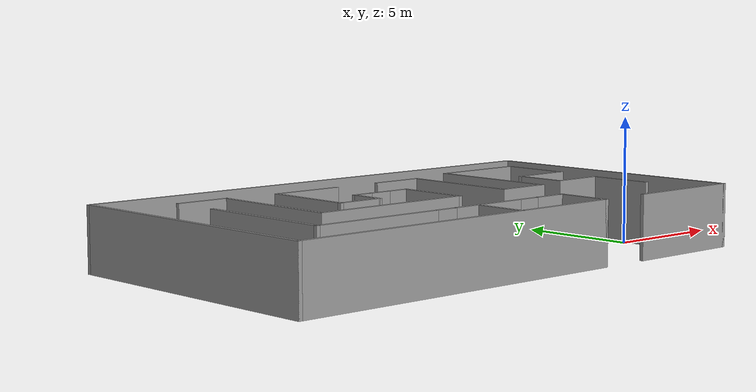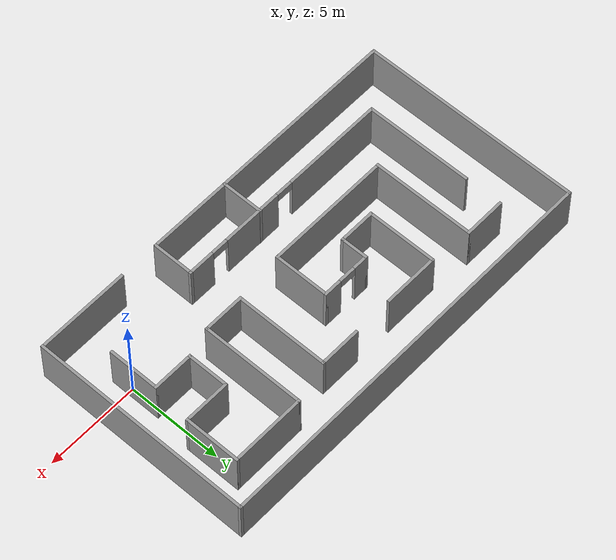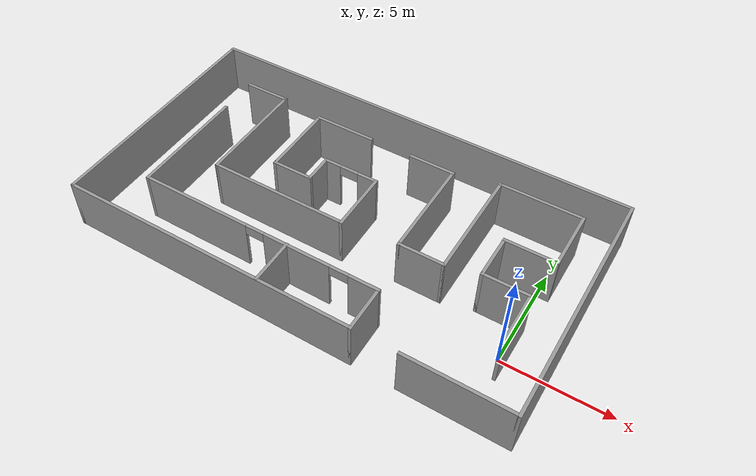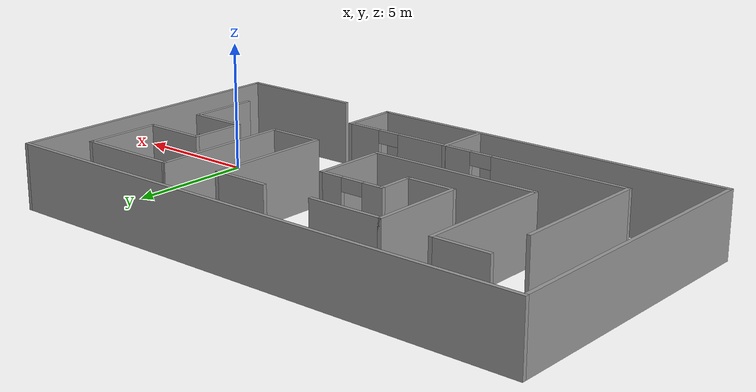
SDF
<?xml version='1.0'?>
<sdf version='1.7'>
  <model name='house.world'>
    <pose>-8.625 2.56 0 0 -0 0</pose>
    <link name='Wall_0'>
      <collision name='Wall_0_Collision'>
        <geometry>
          <box>
            <size>5 0.15 2.5</size>
          </box>
        </geometry>
        <pose>0 0 1.25 0 -0 0</pose>
      </collision>
      <visual name='Wall_0_Visual'>
        <pose>0 0 1.25 0 -0 0</pose>
        <geometry>
          <box>
            <size>5 0.15 2.5</size>
          </box>
        </geometry>
        <material>
          <script>
            <uri>file://media/materials/scripts/gazebo.material</uri>
            <name>Gazebo/Grey</name>
          </script>
          <ambient>1 1 1 1</ambient>
        </material>
        <meta>
          <layer>0</layer>
        </meta>
      </visual>
      <pose>8.25 -5.8 0 0 -0 0</pose>
    </link>
    <link name='Wall_1'>
      <collision name='Wall_1_Collision'>
        <geometry>
          <box>
            <size>11.75 0.15 2.5</size>
          </box>
        </geometry>
        <pose>0 0 1.25 0 -0 0</pose>
      </collision>
      <visual name='Wall_1_Visual'>
        <pose>0 0 1.25 0 -0 0</pose>
        <geometry>
          <box>
            <size>11.75 0.15 2.5</size>
          </box>
        </geometry>
        <material>
          <script>
            <uri>file://media/materials/scripts/gazebo.material</uri>
            <name>Gazebo/Grey</name>
          </script>
          <ambient>1 1 1 1</ambient>
        </material>
        <meta>
          <layer>0</layer>
        </meta>
      </visual>
      <pose>10.675 0 0 0 -0 1.5708</pose>
    </link>
    <link name='Wall_10'>
      <collision name='Wall_10_Collision'>
        <geometry>
          <box>
            <size>5.5 0.15 2.5</size>
          </box>
        </geometry>
        <pose>0 0 1.25 0 -0 0</pose>
      </collision>
      <visual name='Wall_10_Visual'>
        <pose>0 0 1.25 0 -0 0</pose>
        <geometry>
          <box>
            <size>5.5 0.15 2.5</size>
          </box>
        </geometry>
        <material>
          <script>
            <uri>file://media/materials/scripts/gazebo.material</uri>
            <name>Gazebo/Grey</name>
          </script>
          <ambient>1 1 1 1</ambient>
        </material>
        <meta>
          <layer>0</layer>
        </meta>
      </visual>
      <pose>-6.075 1.225 0 0 -0 -1.5708</pose>
    </link>
    <link name='Wall_11'>
      <collision name='Wall_11_Collision'>
        <geometry>
          <box>
            <size>6.75 0.15 2.5</size>
          </box>
        </geometry>
        <pose>0 0 1.25 0 -0 0</pose>
      </collision>
      <visual name='Wall_11_Visual'>
        <pose>0 0 1.25 0 -0 0</pose>
        <geometry>
          <box>
            <size>6.75 0.15 2.5</size>
          </box>
        </geometry>
        <material>
          <script>
            <uri>file://media/materials/scripts/gazebo.material</uri>
            <name>Gazebo/Grey</name>
          </script>
          <ambient>1 1 1 1</ambient>
        </material>
        <meta>
          <layer>0</layer>
        </meta>
      </visual>
      <pose>-2.775 -1.45 0 0 -0 0</pose>
    </link>
    <link name='Wall_12'>
      <collision name='Wall_12_Collision'>
        <geometry>
          <box>
            <size>3 0.15 2.5</size>
          </box>
        </geometry>
        <pose>0 0 1.25 0 -0 0</pose>
      </collision>
      <visual name='Wall_12_Visual'>
        <pose>0 0 1.25 0 -0 0</pose>
        <geometry>
          <box>
            <size>3 0.15 2.5</size>
          </box>
        </geometry>
        <material>
          <script>
            <uri>file://media/materials/scripts/gazebo.material</uri>
            <name>Gazebo/Grey</name>
          </script>
          <ambient>1 1 1 1</ambient>
        </material>
        <meta>
          <layer>0</layer>
        </meta>
      </visual>
      <pose>0.524999 -0.025 0 0 -0 1.5708</pose>
    </link>
    <link name='Wall_13'>
      <pose>-0.775 1.4 0 0 -0 3.14159</pose>
      <visual name='Wall_13_Visual_0'>
        <pose>-0.881404 0 1.25 0 -0 0</pose>
        <geometry>
          <box>
            <size>0.987191 0.15 2.5</size>
          </box>
        </geometry>
        <material>
          <script>
            <uri>file://media/materials/scripts/gazebo.material</uri>
            <name>Gazebo/Grey</name>
          </script>
          <ambient>1 1 1 1</ambient>
        </material>
        <meta>
          <layer>0</layer>
        </meta>
      </visual>
      <collision name='Wall_13_Collision_0'>
        <geometry>
          <box>
            <size>0.987191 0.15 2.5</size>
          </box>
        </geometry>
        <pose>-0.881404 0 1.25 0 -0 0</pose>
      </collision>
      <visual name='Wall_13_Visual_1'>
        <pose>0.943596 0 1.25 0 -0 0</pose>
        <geometry>
          <box>
            <size>0.862809 0.15 2.5</size>
          </box>
        </geometry>
        <material>
          <script>
            <uri>file://media/materials/scripts/gazebo.material</uri>
            <name>Gazebo/Grey</name>
          </script>
          <ambient>1 1 1 1</ambient>
        </material>
        <meta>
          <layer>0</layer>
        </meta>
      </visual>
      <collision name='Wall_13_Collision_1'>
        <geometry>
          <box>
            <size>0.862809 0.15 2.5</size>
          </box>
        </geometry>
        <pose>0.943596 0 1.25 0 -0 0</pose>
      </collision>
      <visual name='Wall_13_Visual_2'>
        <pose>0.062191 0 2.25 0 -0 0</pose>
        <geometry>
          <box>
            <size>0.9 0.15 0.5</size>
          </box>
        </geometry>
        <material>
          <script>
            <uri>file://media/materials/scripts/gazebo.material</uri>
            <name>Gazebo/Grey</name>
          </script>
          <ambient>1 1 1 1</ambient>
        </material>
        <meta>
          <layer>0</layer>
        </meta>
      </visual>
      <collision name='Wall_13_Collision_2'>
        <geometry>
          <box>
            <size>0.9 0.15 0.5</size>
          </box>
        </geometry>
        <pose>0.062191 0 2.25 0 -0 0</pose>
      </collision>
    </link>
    <link name='Wall_14'>
      <collision name='Wall_14_Collision'>
        <geometry>
          <box>
            <size>1.5 0.15 2.5</size>
          </box>
        </geometry>
        <pose>0 0 1.25 0 -0 0</pose>
      </collision>
      <visual name='Wall_14_Visual'>
        <pose>0 0 1.25 0 -0 0</pose>
        <geometry>
          <box>
            <size>1.5 0.15 2.5</size>
          </box>
        </geometry>
        <material>
          <script>
            <uri>file://media/materials/scripts/gazebo.material</uri>
            <name>Gazebo/Grey</name>
          </script>
          <ambient>1 1 1 1</ambient>
        </material>
        <meta>
          <layer>0</layer>
        </meta>
      </visual>
      <pose>-2.075 0.725 0 0 -0 -1.5708</pose>
    </link>
    <link name='Wall_15'>
      <collision name='Wall_15_Collision'>
        <geometry>
          <box>
            <size>2 0.15 2.5</size>
          </box>
        </geometry>
        <pose>0 0 1.25 0 -0 0</pose>
      </collision>
      <visual name='Wall_15_Visual'>
        <pose>0 0 1.25 0 -0 0</pose>
        <geometry>
          <box>
            <size>2 0.15 2.5</size>
          </box>
        </geometry>
        <material>
          <script>
            <uri>file://media/materials/scripts/gazebo.material</uri>
            <name>Gazebo/Grey</name>
          </script>
          <ambient>1 1 1 1</ambient>
        </material>
        <meta>
          <layer>0</layer>
        </meta>
      </visual>
      <pose>-3 0.05 0 0 -0 3.14159</pose>
    </link>
    <link name='Wall_16'>
      <collision name='Wall_16_Collision'>
        <geometry>
          <box>
            <size>3.75 0.15 2.5</size>
          </box>
        </geometry>
        <pose>0 0 1.25 0 -0 0</pose>
      </collision>
      <visual name='Wall_16_Visual'>
        <pose>0 0 1.25 0 -0 0</pose>
        <geometry>
          <box>
            <size>3.75 0.15 2.5</size>
          </box>
        </geometry>
        <material>
          <script>
            <uri>file://media/materials/scripts/gazebo.material</uri>
            <name>Gazebo/Grey</name>
          </script>
          <ambient>1 1 1 1</ambient>
        </material>
        <meta>
          <layer>0</layer>
        </meta>
      </visual>
      <pose>-3.925 1.85 0 0 -0 1.5708</pose>
    </link>
    <link name='Wall_18'>
      <collision name='Wall_18_Collision'>
        <geometry>
          <box>
            <size>5 0.15 2.5</size>
          </box>
        </geometry>
        <pose>0 0 1.25 0 -0 0</pose>
      </collision>
      <visual name='Wall_18_Visual'>
        <pose>0 0 1.25 0 -0 0</pose>
        <geometry>
          <box>
            <size>5 0.15 2.5</size>
          </box>
        </geometry>
        <material>
          <script>
            <uri>file://media/materials/scripts/gazebo.material</uri>
            <name>Gazebo/Grey</name>
          </script>
          <ambient>1 1 1 1</ambient>
        </material>
        <meta>
          <layer>0</layer>
        </meta>
      </visual>
      <pose>3.175 1.225 0 0 -0 -1.5708</pose>
    </link>
    <link name='Wall_19'>
      <collision name='Wall_19_Collision'>
        <geometry>
          <box>
            <size>2.25 0.15 2.5</size>
          </box>
        </geometry>
        <pose>0 0 1.25 0 -0 0</pose>
      </collision>
      <visual name='Wall_19_Visual'>
        <pose>0 0 1.25 0 -0 0</pose>
        <geometry>
          <box>
            <size>2.25 0.15 2.5</size>
          </box>
        </geometry>
        <material>
          <script>
            <uri>file://media/materials/scripts/gazebo.material</uri>
            <name>Gazebo/Grey</name>
          </script>
          <ambient>1 1 1 1</ambient>
        </material>
        <meta>
          <layer>0</layer>
        </meta>
      </visual>
      <pose>4.225 -1.2 0 0 -0 0</pose>
    </link>
    <link name='Wall_20'>
      <collision name='Wall_20_Collision'>
        <geometry>
          <box>
            <size>5.5 0.15 2.5</size>
          </box>
        </geometry>
        <pose>0 0 1.25 0 -0 0</pose>
      </collision>
      <visual name='Wall_20_Visual'>
        <pose>0 0 1.25 0 -0 0</pose>
        <geometry>
          <box>
            <size>5.5 0.15 2.5</size>
          </box>
        </geometry>
        <material>
          <script>
            <uri>file://media/materials/scripts/gazebo.material</uri>
            <name>Gazebo/Grey</name>
          </script>
          <ambient>1 1 1 1</ambient>
        </material>
        <meta>
          <layer>0</layer>
        </meta>
      </visual>
      <pose>5.275 1.475 0 0 -0 1.5708</pose>
    </link>
    <link name='Wall_21'>
      <collision name='Wall_21_Collision'>
        <geometry>
          <box>
            <size>4 0.15 2.5</size>
          </box>
        </geometry>
        <pose>0 0 1.25 0 -0 0</pose>
      </collision>
      <visual name='Wall_21_Visual'>
        <pose>0 0 1.25 0 -0 0</pose>
        <geometry>
          <box>
            <size>4 0.15 2.5</size>
          </box>
        </geometry>
        <material>
          <script>
            <uri>file://media/materials/scripts/gazebo.material</uri>
            <name>Gazebo/Grey</name>
          </script>
          <ambient>1 1 1 1</ambient>
        </material>
        <meta>
          <layer>0</layer>
        </meta>
      </visual>
      <pose>7.2 4.15 0 0 -0 0</pose>
    </link>
    <link name='Wall_22'>
      <collision name='Wall_22_Collision'>
        <geometry>
          <box>
            <size>3 0.15 2.5</size>
          </box>
        </geometry>
        <pose>0 0 1.25 0 -0 0</pose>
      </collision>
      <visual name='Wall_22_Visual'>
        <pose>0 0 1.25 0 -0 0</pose>
        <geometry>
          <box>
            <size>3 0.15 2.5</size>
          </box>
        </geometry>
        <material>
          <script>
            <uri>file://media/materials/scripts/gazebo.material</uri>
            <name>Gazebo/Grey</name>
          </script>
          <ambient>1 1 1 1</ambient>
        </material>
        <meta>
          <layer>0</layer>
        </meta>
      </visual>
      <pose>9.125 2.725 0 0 -0 -1.5708</pose>
    </link>
    <link name='Wall_23'>
      <collision name='Wall_23_Collision'>
        <geometry>
          <box>
            <size>2.5 0.15 2.5</size>
          </box>
        </geometry>
        <pose>0 0 1.25 0 -0 0</pose>
      </collision>
      <visual name='Wall_23_Visual'>
        <pose>0 0 1.25 0 -0 0</pose>
        <geometry>
          <box>
            <size>2.5 0.15 2.5</size>
          </box>
        </geometry>
        <material>
          <script>
            <uri>file://media/materials/scripts/gazebo.material</uri>
            <name>Gazebo/Grey</name>
          </script>
          <ambient>1 1 1 1</ambient>
        </material>
        <meta>
          <layer>0</layer>
        </meta>
      </visual>
      <pose>7.95 1.3 0 0 -0 3.14159</pose>
    </link>
    <link name='Wall_24'>
      <collision name='Wall_24_Collision'>
        <geometry>
          <box>
            <size>2.25 0.15 2.5</size>
          </box>
        </geometry>
        <pose>0 0 1.25 0 -0 0</pose>
      </collision>
      <visual name='Wall_24_Visual'>
        <pose>0 0 1.25 0 -0 0</pose>
        <geometry>
          <box>
            <size>2.25 0.15 2.5</size>
          </box>
        </geometry>
        <material>
          <script>
            <uri>file://media/materials/scripts/gazebo.material</uri>
            <name>Gazebo/Grey</name>
          </script>
          <ambient>1 1 1 1</ambient>
        </material>
        <meta>
          <layer>0</layer>
        </meta>
      </visual>
      <pose>6.775 0.25 0 0 -0 -1.5708</pose>
    </link>
    <link name='Wall_25'>
      <collision name='Wall_25_Collision'>
        <geometry>
          <box>
            <size>2.25 0.15 2.5</size>
          </box>
        </geometry>
        <pose>0 0 1.25 0 -0 0</pose>
      </collision>
      <visual name='Wall_25_Visual'>
        <pose>0 0 1.25 0 -0 0</pose>
        <geometry>
          <box>
            <size>2.25 0.15 2.5</size>
          </box>
        </geometry>
        <material>
          <script>
            <uri>file://media/materials/scripts/gazebo.material</uri>
            <name>Gazebo/Grey</name>
          </script>
          <ambient>1 1 1 1</ambient>
        </material>
        <meta>
          <layer>0</layer>
        </meta>
      </visual>
      <pose>7.825 -0.8 0 0 -0 0</pose>
    </link>
    <link name='Wall_26'>
      <collision name='Wall_26_Collision'>
        <geometry>
          <box>
            <size>2.75 0.15 2.5</size>
          </box>
        </geometry>
        <pose>0 0 1.25 0 -0 0</pose>
      </collision>
      <visual name='Wall_26_Visual'>
        <pose>0 0 1.25 0 -0 0</pose>
        <geometry>
          <box>
            <size>2.75 0.15 2.5</size>
          </box>
        </geometry>
        <material>
          <script>
            <uri>file://media/materials/scripts/gazebo.material</uri>
            <name>Gazebo/Grey</name>
          </script>
          <ambient>1 1 1 1</ambient>
        </material>
        <meta>
          <layer>0</layer>
        </meta>
      </visual>
      <pose>8.875 -2.1 0 0 -0 -1.5708</pose>
    </link>
    <link name='Wall_28'>
      <collision name='Wall_28_Collision'>
        <geometry>
          <box>
            <size>2.25 0.15 2.5</size>
          </box>
        </geometry>
        <pose>0 0 1.25 0 -0 0</pose>
      </collision>
      <visual name='Wall_28_Visual'>
        <pose>0 0 1.25 0 -0 0</pose>
        <geometry>
          <box>
            <size>2.25 0.15 2.5</size>
          </box>
        </geometry>
        <material>
          <script>
            <uri>file://media/materials/scripts/gazebo.material</uri>
            <name>Gazebo/Grey</name>
          </script>
          <ambient>1 1 1 1</ambient>
        </material>
        <meta>
          <layer>0</layer>
        </meta>
      </visual>
      <pose>-0.732684 -4.73145 0 0 -0 -1.5708</pose>
    </link>
    <link name='Wall_3'>
      <collision name='Wall_3_Collision'>
        <geometry>
          <box>
            <size>21.5 0.15 2.5</size>
          </box>
        </geometry>
        <pose>0 0 1.25 0 -0 0</pose>
      </collision>
      <visual name='Wall_3_Visual'>
        <pose>0 0 1.25 0 -0 0</pose>
        <geometry>
          <box>
            <size>21.5 0.15 2.5</size>
          </box>
        </geometry>
        <material>
          <script>
            <uri>file://media/materials/scripts/gazebo.material</uri>
            <name>Gazebo/Grey</name>
          </script>
          <ambient>1 1 1 1</ambient>
        </material>
        <meta>
          <layer>0</layer>
        </meta>
      </visual>
      <pose>-0 5.8 0 0 -0 3.14159</pose>
    </link>
    <link name='Wall_33'>
      <collision name='Wall_33_Collision'>
        <geometry>
          <box>
            <size>3 0.15 2.5</size>
          </box>
        </geometry>
        <pose>0 0 1.25 0 -0 0</pose>
      </collision>
      <visual name='Wall_33_Visual'>
        <pose>0 0 1.25 0 -0 0</pose>
        <geometry>
          <box>
            <size>3 0.15 2.5</size>
          </box>
        </geometry>
        <material>
          <script>
            <uri>file://media/materials/scripts/gazebo.material</uri>
            <name>Gazebo/Grey</name>
          </script>
          <ambient>1 1 1 1</ambient>
        </material>
        <meta>
          <layer>0</layer>
        </meta>
      </visual>
      <pose>-2.5 3.65 0 0 -0 0</pose>
    </link>
    <link name='Wall_35'>
      <collision name='Wall_35_Collision'>
        <geometry>
          <box>
            <size>2.25 0.15 2.5</size>
          </box>
        </geometry>
        <pose>0 0 1.25 0 -0 0</pose>
      </collision>
      <visual name='Wall_35_Visual'>
        <pose>0 0 1.25 0 -0 0</pose>
        <geometry>
          <box>
            <size>2.25 0.15 2.5</size>
          </box>
        </geometry>
        <material>
          <script>
            <uri>file://media/materials/scripts/gazebo.material</uri>
            <name>Gazebo/Grey</name>
          </script>
          <ambient>1 1 1 1</ambient>
        </material>
        <meta>
          <layer>0</layer>
        </meta>
      </visual>
      <pose>2.125 3.65 0 0 -0 3.14159</pose>
    </link>
    <link name='Wall_37'>
      <collision name='Wall_37_Collision'>
        <geometry>
          <box>
            <size>2.25 0.15 2.5</size>
          </box>
        </geometry>
        <pose>0 0 1.25 0 -0 0</pose>
      </collision>
      <visual name='Wall_37_Visual'>
        <pose>0 0 1.25 0 -0 0</pose>
        <geometry>
          <box>
            <size>2.25 0.15 2.5</size>
          </box>
        </geometry>
        <material>
          <script>
            <uri>file://media/materials/scripts/gazebo.material</uri>
            <name>Gazebo/Grey</name>
          </script>
          <ambient>1 1 1 1</ambient>
        </material>
        <meta>
          <layer>0</layer>
        </meta>
      </visual>
      <pose>-7.125 3.9 0 0 -0 3.14159</pose>
    </link>
    <link name='Wall_4'>
      <collision name='Wall_4_Collision'>
        <geometry>
          <box>
            <size>11.75 0.15 2.5</size>
          </box>
        </geometry>
        <pose>0 0 1.25 0 -0 0</pose>
      </collision>
      <visual name='Wall_4_Visual'>
        <pose>0 0 1.25 0 -0 0</pose>
        <geometry>
          <box>
            <size>11.75 0.15 2.5</size>
          </box>
        </geometry>
        <material>
          <script>
            <uri>file://media/materials/scripts/gazebo.material</uri>
            <name>Gazebo/Grey</name>
          </script>
          <ambient>1 1 1 1</ambient>
        </material>
        <meta>
          <layer>0</layer>
        </meta>
      </visual>
      <pose>-10.675 0 0 0 -0 -1.5708</pose>
    </link>
    <link name='Wall_5'>
      <collision name='Wall_5_Collision'>
        <geometry>
          <box>
            <size>14.5 0.15 2.5</size>
          </box>
        </geometry>
        <pose>0 0 1.25 0 -0 0</pose>
      </collision>
      <visual name='Wall_5_Visual'>
        <pose>0 0 1.25 0 -0 0</pose>
        <geometry>
          <box>
            <size>14.5 0.15 2.5</size>
          </box>
        </geometry>
        <material>
          <script>
            <uri>file://media/materials/scripts/gazebo.material</uri>
            <name>Gazebo/Grey</name>
          </script>
          <ambient>1 1 1 1</ambient>
        </material>
        <meta>
          <layer>0</layer>
        </meta>
      </visual>
      <pose>-3.5 -5.8 0 0 -0 0</pose>
    </link>
    <link name='Wall_6'>
      <collision name='Wall_6_Collision'>
        <geometry>
          <box>
            <size>2.25 0.15 2.5</size>
          </box>
        </geometry>
        <pose>0 0 1.25 0 -0 0</pose>
      </collision>
      <visual name='Wall_6_Visual'>
        <pose>0 0 1.25 0 -0 0</pose>
        <geometry>
          <box>
            <size>2.25 0.15 2.5</size>
          </box>
        </geometry>
        <material>
          <script>
            <uri>file://media/materials/scripts/gazebo.material</uri>
            <name>Gazebo/Grey</name>
          </script>
          <ambient>1 1 1 1</ambient>
        </material>
        <meta>
          <layer>0</layer>
        </meta>
      </visual>
      <pose>3.675 -4.75 0 0 -0 1.5708</pose>
    </link>
    <link name='Wall_7'>
      <pose>-2.25 -3.7 0 0 -0 3.14159</pose>
      <visual name='Wall_7_Visual_0'>
        <pose>-5.26741 0 1.25 0 -0 0</pose>
        <geometry>
          <box>
            <size>1.46519 0.15 2.5</size>
          </box>
        </geometry>
        <material>
          <script>
            <uri>file://media/materials/scripts/gazebo.material</uri>
            <name>Gazebo/Grey</name>
          </script>
          <ambient>1 1 1 1</ambient>
        </material>
        <meta>
          <layer>0</layer>
        </meta>
      </visual>
      <collision name='Wall_7_Collision_0'>
        <geometry>
          <box>
            <size>1.46519 0.15 2.5</size>
          </box>
        </geometry>
        <pose>-5.26741 0 1.25 0 -0 0</pose>
      </collision>
      <visual name='Wall_7_Visual_1'>
        <pose>-2.00401 0 1.25 0 -0 0</pose>
        <geometry>
          <box>
            <size>3.26162 0.15 2.5</size>
          </box>
        </geometry>
        <material>
          <script>
            <uri>file://media/materials/scripts/gazebo.material</uri>
            <name>Gazebo/Grey</name>
          </script>
          <ambient>1 1 1 1</ambient>
        </material>
        <meta>
          <layer>0</layer>
        </meta>
      </visual>
      <collision name='Wall_7_Collision_1'>
        <geometry>
          <box>
            <size>3.26162 0.15 2.5</size>
          </box>
        </geometry>
        <pose>-2.00401 0 1.25 0 -0 0</pose>
      </collision>
      <visual name='Wall_7_Visual_2'>
        <pose>3.2634 0 1.25 0 -0 0</pose>
        <geometry>
          <box>
            <size>5.4732 0.15 2.5</size>
          </box>
        </geometry>
        <material>
          <script>
            <uri>file://media/materials/scripts/gazebo.material</uri>
            <name>Gazebo/Grey</name>
          </script>
          <ambient>1 1 1 1</ambient>
        </material>
        <meta>
          <layer>0</layer>
        </meta>
      </visual>
      <collision name='Wall_7_Collision_2'>
        <geometry>
          <box>
            <size>5.4732 0.15 2.5</size>
          </box>
        </geometry>
        <pose>3.2634 0 1.25 0 -0 0</pose>
      </collision>
      <visual name='Wall_7_Visual_3'>
        <pose>-4.08481 0 2.25 0 -0 0</pose>
        <geometry>
          <box>
            <size>0.9 0.15 0.5</size>
          </box>
        </geometry>
        <material>
          <script>
            <uri>file://media/materials/scripts/gazebo.material</uri>
            <name>Gazebo/Grey</name>
          </script>
          <ambient>1 1 1 1</ambient>
        </material>
        <meta>
          <layer>0</layer>
        </meta>
      </visual>
      <collision name='Wall_7_Collision_3'>
        <geometry>
          <box>
            <size>0.9 0.15 0.5</size>
          </box>
        </geometry>
        <pose>-4.08481 0 2.25 0 -0 0</pose>
      </collision>
      <visual name='Wall_7_Visual_4'>
        <pose>0.076802 0 2.25 0 -0 0</pose>
        <geometry>
          <box>
            <size>0.9 0.15 0.5</size>
          </box>
        </geometry>
        <material>
          <script>
            <uri>file://media/materials/scripts/gazebo.material</uri>
            <name>Gazebo/Grey</name>
          </script>
          <ambient>1 1 1 1</ambient>
        </material>
        <meta>
          <layer>0</layer>
        </meta>
      </visual>
      <collision name='Wall_7_Collision_4'>
        <geometry>
          <box>
            <size>0.9 0.15 0.5</size>
          </box>
        </geometry>
        <pose>0.076802 0 2.25 0 -0 0</pose>
      </collision>
    </link>
    <link name='Wall_8'>
      <collision name='Wall_8_Collision'>
        <geometry>
          <box>
            <size>5.75 0.15 2.5</size>
          </box>
        </geometry>
        <pose>0 0 1.25 0 -0 0</pose>
      </collision>
      <visual name='Wall_8_Visual'>
        <pose>0 0 1.25 0 -0 0</pose>
        <geometry>
          <box>
            <size>5.75 0.15 2.5</size>
          </box>
        </geometry>
        <material>
          <script>
            <uri>file://media/materials/scripts/gazebo.material</uri>
            <name>Gazebo/Grey</name>
          </script>
          <ambient>1 1 1 1</ambient>
        </material>
        <meta>
          <layer>0</layer>
        </meta>
      </visual>
      <pose>-8.175 -0.9 0 0 -0 1.5708</pose>
    </link>
    <static>1</static>
  </model>
</sdf>
